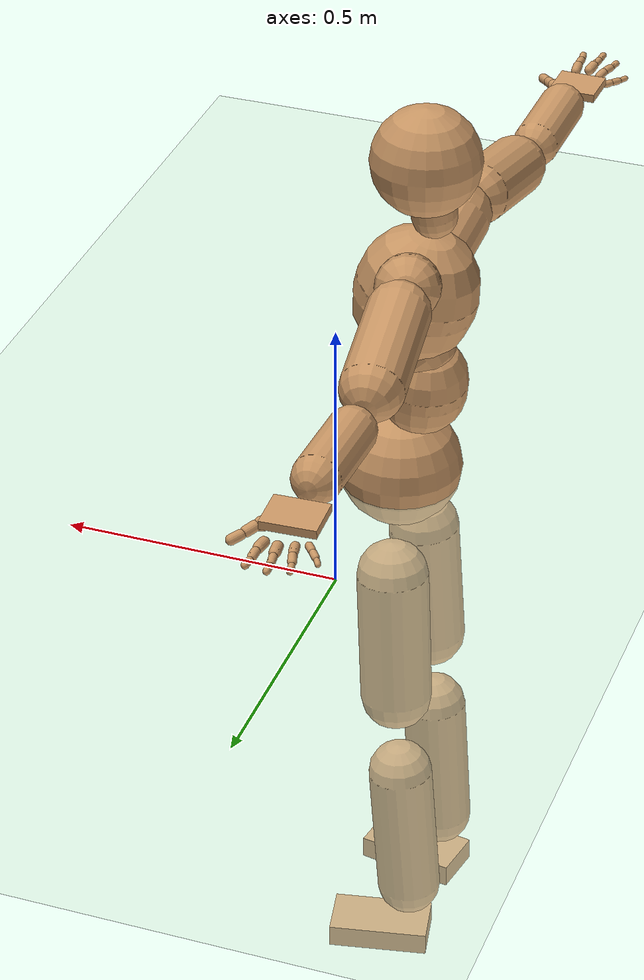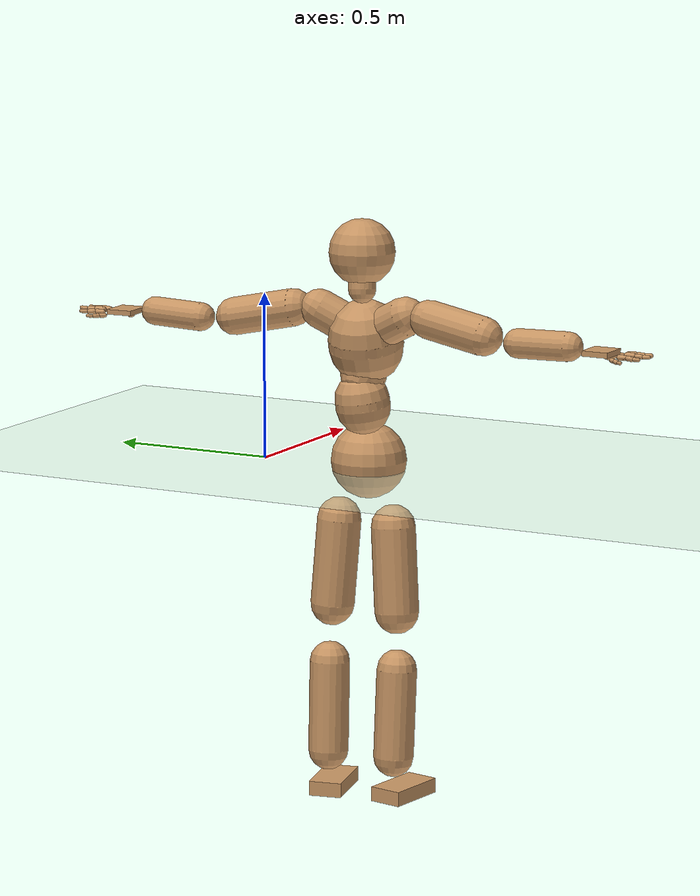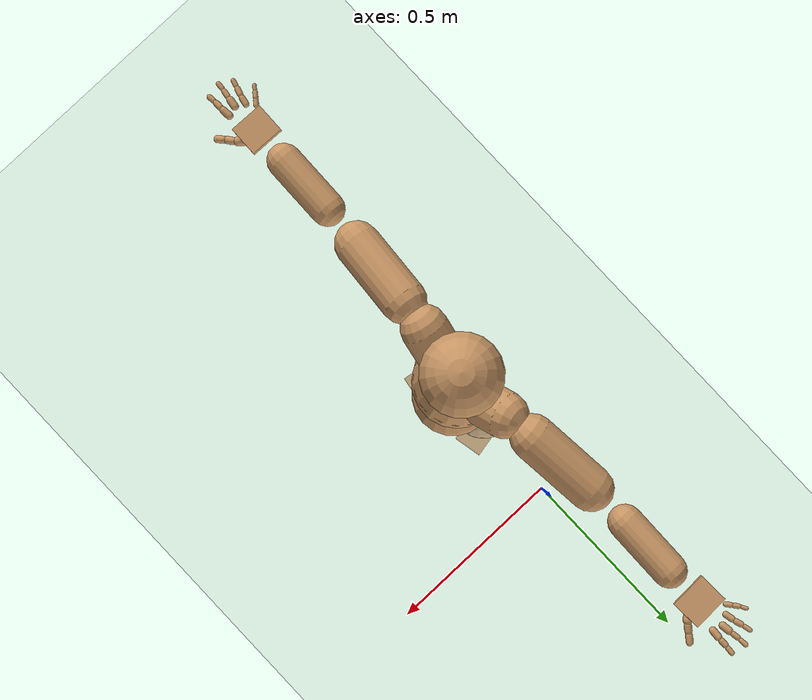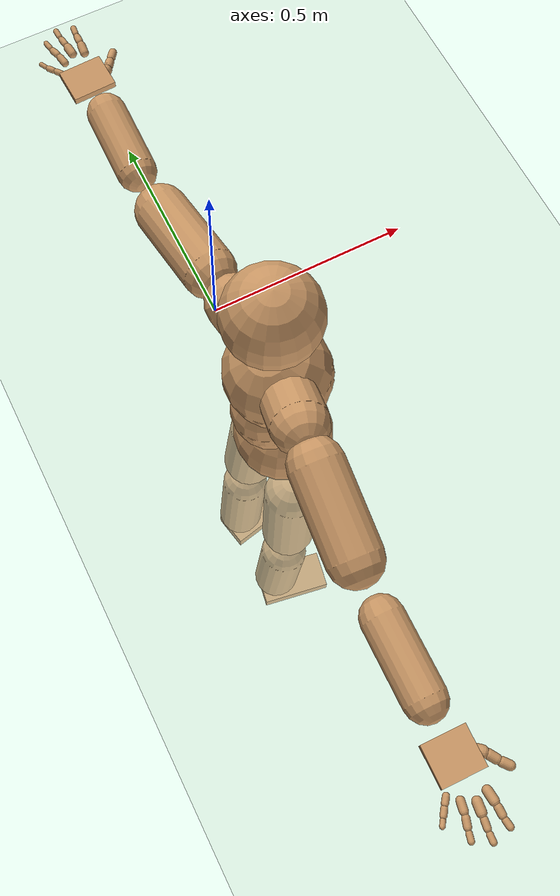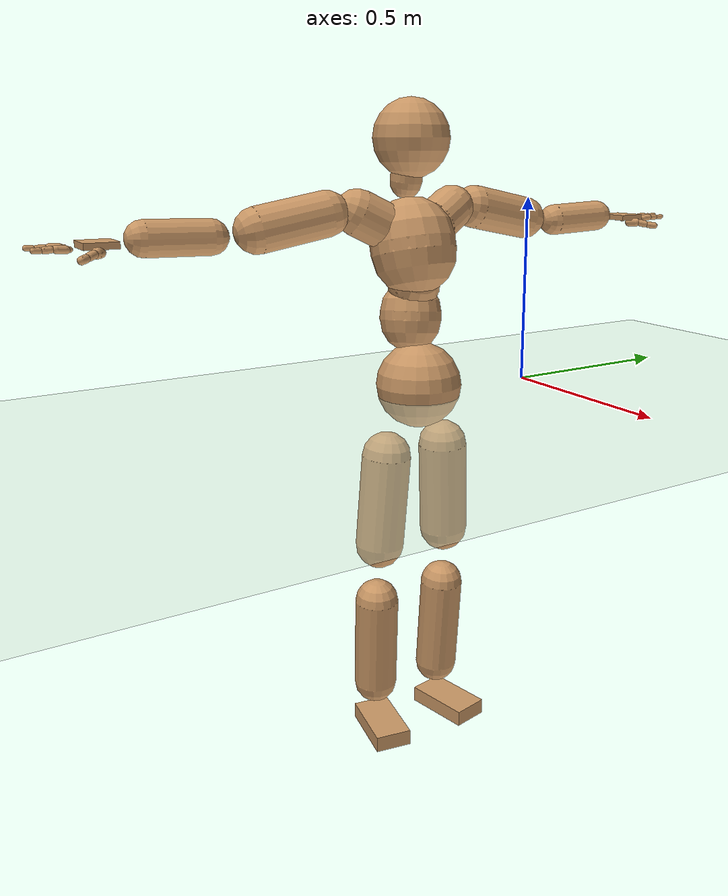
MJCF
<mujoco model="humanoid">
  <compiler coordinate="local" angle="radian"/>
  <default>
    <joint damping="0.0" armature="0.01" stiffness="0.0" limited="true"/>
    <geom conaffinity="1" condim="3" contype="7" margin="0.001" rgba="0.8 0.6 .4 1"/>
  </default>
  <asset>
    <texture type="skybox" builtin="gradient" rgb1=".4 .5 .6" rgb2="0 0 0" width="100" height="100"/>
    <texture builtin="flat" height="1278" mark="cross" markrgb="1 1 1" name="texgeom" random="0.01" rgb1="0.8 0.6 0.4" rgb2="0.8 0.6 0.4" type="cube" width="127"/>
    <texture builtin="checker" height="100" name="texplane" rgb1="0 0 0" rgb2="0.8 0.8 0.8" type="2d" width="100"/>
    <material name="MatPlane" reflectance="0.5" shininess="1" specular="1" texrepeat="60 60" texture="texplane"/>
    <material name="geom" texture="texgeom" texuniform="true"/>
  </asset>
  <worldbody>
    <light cutoff="100" diffuse="1 1 1" dir="-0 0 -1.3" directional="true" exponent="1" pos="0 0 1.3" specular=".1 .1 .1"/>
    <geom conaffinity="1" condim="3" name="floor" pos="0 0 0" rgba="0.8 0.9 0.8 1" size="100 100 .2" type="plane" material="MatPlane"/>
    <body name="Pelvis" pos="0.0007 -0.3512 0.027">
      <freejoint name="Pelvis"/>
      <geom type="sphere" contype="1" conaffinity="1" density="500" size="0.1137" pos="0.0000 0.0000 0.0000" name="Pelvis"/>
      <body name="L_Hip" pos="-0.0125 0.085 -0.0979">
        <joint name="L_Hip_x" type="hinge" pos="0 0 0" axis="1 0 0" stiffness="800" damping="80" armature="0.02" range="-180.0000 180.0000"/>
        <joint name="L_Hip_y" type="hinge" pos="0 0 0" axis="0 1 0" stiffness="800" damping="80" armature="0.02" range="-180.0000 180.0000"/>
        <joint name="L_Hip_z" type="hinge" pos="0 0 0" axis="0 0 1" stiffness="800" damping="80" armature="0.02" range="-180.0000 180.0000"/>
        <geom type="capsule" contype="1" conaffinity="1" density="500" fromto="-0.0050 0.0051 -0.0862 -0.0199 0.0205 -0.3450" size="0.0663" name="L_Hip"/>
        <body name="L_Knee" pos="-0.0248 0.0257 -0.4312">
          <joint name="L_Knee_x" type="hinge" pos="0 0 0" axis="1 0 0" stiffness="800" damping="80" armature="0.02" range="-180.0000 180.0000"/>
          <joint name="L_Knee_y" type="hinge" pos="0 0 0" axis="0 1 0" stiffness="800" damping="80" armature="0.02" range="-180.0000 180.0000"/>
          <joint name="L_Knee_z" type="hinge" pos="0 0 0" axis="0 0 1" stiffness="800" damping="80" armature="0.02" range="-180.0000 180.0000"/>
          <geom type="capsule" contype="1" conaffinity="1" density="500" fromto="-0.0063 -0.0016 -0.0907 -0.0253 -0.0065 -0.3629" size="0.0601" name="L_Knee"/>
          <body name="L_Ankle" pos="-0.0316 -0.0081 -0.4536">
            <joint name="L_Ankle_x" type="hinge" pos="0 0 0" axis="1 0 0" stiffness="800" damping="80" armature="0.02" range="-180.0000 180.0000"/>
            <joint name="L_Ankle_y" type="hinge" pos="0 0 0" axis="0 1 0" stiffness="800" damping="80" armature="0.02" range="-180.0000 180.0000"/>
            <joint name="L_Ankle_z" type="hinge" pos="0 0 0" axis="0 0 1" stiffness="800" damping="80" armature="0.02" range="-180.0000 180.0000"/>
            <geom type="box" contype="1" conaffinity="1" density="500" pos="0.0595 0.0121 -0.0243" size="0.0941 0.0499 0.0222" quat="0.9950 0.0000 0.0000 0.1003" name="L_Ankle"/>
            <body name="L_Toe" pos="0.1189 0.0242 -0.0485">
              <joint name="L_Toe_x" type="hinge" pos="0 0 0" axis="1 0 0" stiffness="500" damping="50" armature="0.02" range="-180.0000 180.0000"/>
              <joint name="L_Toe_y" type="hinge" pos="0 0 0" axis="0 1 0" stiffness="500" damping="50" armature="0.02" range="-180.0000 180.0000"/>
              <joint name="L_Toe_z" type="hinge" pos="0 0 0" axis="0 0 1" stiffness="500" damping="50" armature="0.02" range="-180.0000 180.0000"/>
              <geom type="box" contype="1" conaffinity="1" density="500" pos="0.0000 0.0000 0.0233" size="0.001 0.0024 0.0011" quat="0.9943 0.0000 0.0000 0.1066" name="L_Toe"/>
            </body>
          </body>
        </body>
      </body>
      <body name="R_Hip" pos="-0.0138 -0.0847 -0.1043">
        <joint name="R_Hip_x" type="hinge" pos="0 0 0" axis="1 0 0" stiffness="800" damping="80" armature="0.02" range="-180.0000 180.0000"/>
        <joint name="R_Hip_y" type="hinge" pos="0 0 0" axis="0 1 0" stiffness="800" damping="80" armature="0.02" range="-180.0000 180.0000"/>
        <joint name="R_Hip_z" type="hinge" pos="0 0 0" axis="0 0 1" stiffness="800" damping="80" armature="0.02" range="-180.0000 180.0000"/>
        <geom type="capsule" contype="1" conaffinity="1" density="500" fromto="-0.0036 -0.0059 -0.0855 -0.0145 -0.0238 -0.3419" size="0.0661" name="R_Hip"/>
        <body name="R_Knee" pos="-0.0181 -0.0297 -0.4274">
          <joint name="R_Knee_x" type="hinge" pos="0 0 0" axis="1 0 0" stiffness="800" damping="80" armature="0.02" range="-180.0000 180.0000"/>
          <joint name="R_Knee_y" type="hinge" pos="0 0 0" axis="0 1 0" stiffness="800" damping="80" armature="0.02" range="-180.0000 180.0000"/>
          <joint name="R_Knee_z" type="hinge" pos="0 0 0" axis="0 0 1" stiffness="800" damping="80" armature="0.02" range="-180.0000 180.0000"/>
          <geom type="capsule" contype="1" conaffinity="1" density="500" fromto="-0.0057 0.0006 -0.0889 -0.0227 0.0023 -0.3554" size="0.0601" name="R_Knee"/>
          <body name="R_Ankle" pos="-0.0283 0.0029 -0.4443">
            <joint name="R_Ankle_x" type="hinge" pos="0 0 0" axis="1 0 0" stiffness="800" damping="80" armature="0.02" range="-180.0000 180.0000"/>
            <joint name="R_Ankle_y" type="hinge" pos="0 0 0" axis="0 1 0" stiffness="800" damping="80" armature="0.02" range="-180.0000 180.0000"/>
            <joint name="R_Ankle_z" type="hinge" pos="0 0 0" axis="0 0 1" stiffness="800" damping="80" armature="0.02" range="-180.0000 180.0000"/>
            <geom type="box" contype="1" conaffinity="1" density="500" pos="0.0564 -0.0097 -0.0259" size="0.0941 0.0499 0.0222" quat="0.9963 0.0000 0.0000 -0.0855" name="R_Ankle"/>
            <body name="R_Toe" pos="0.1128 -0.0195 -0.0519">
              <joint name="R_Toe_x" type="hinge" pos="0 0 0" axis="1 0 0" stiffness="500" damping="50" armature="0.02" range="-180.0000 180.0000"/>
              <joint name="R_Toe_y" type="hinge" pos="0 0 0" axis="0 1 0" stiffness="500" damping="50" armature="0.02" range="-180.0000 180.0000"/>
              <joint name="R_Toe_z" type="hinge" pos="0 0 0" axis="0 0 1" stiffness="500" damping="50" armature="0.02" range="-180.0000 180.0000"/>
              <geom type="box" contype="1" conaffinity="1" density="500" pos="0.0000 0.0000 0.0250" size="0.001 0.0024 0.0011" quat="0.9971 0.0000 0.0000 -0.0756" name="R_Toe"/>
            </body>
          </body>
        </body>
      </body>
      <body name="Torso" pos="-0.0332 -0.0066 0.1166">
        <joint name="Torso_x" type="hinge" pos="0 0 0" axis="1 0 0" stiffness="1000" damping="100" armature="0.02" range="-180.0000 180.0000"/>
        <joint name="Torso_y" type="hinge" pos="0 0 0" axis="0 1 0" stiffness="1000" damping="100" armature="0.02" range="-180.0000 180.0000"/>
        <joint name="Torso_z" type="hinge" pos="0 0 0" axis="0 0 1" stiffness="1000" damping="100" armature="0.02" range="-180.0000 180.0000"/>
        <geom type="capsule" contype="1" conaffinity="1" density="500" fromto="-0.0085 0.0078 0.0739 -0.0057 0.0052 0.0493" size="0.0814" name="Torso"/>
        <body name="Spine" pos="-0.0141 0.013 0.1231">
          <joint name="Spine_x" type="hinge" pos="0 0 0" axis="1 0 0" stiffness="1000" damping="100" armature="0.02" range="-180.0000 180.0000"/>
          <joint name="Spine_y" type="hinge" pos="0 0 0" axis="0 1 0" stiffness="1000" damping="100" armature="0.02" range="-180.0000 180.0000"/>
          <joint name="Spine_z" type="hinge" pos="0 0 0" axis="0 0 1" stiffness="1000" damping="100" armature="0.02" range="-180.0000 180.0000"/>
          <geom type="capsule" contype="1" conaffinity="1" density="500" fromto="0.0247 -0.0044 0.0276 0.0165 -0.0030 0.0184" size="0.0677" name="Spine"/>
          <body name="Chest" pos="0.0412 -0.0074 0.0459">
            <joint name="Chest_x" type="hinge" pos="0 0 0" axis="1 0 0" stiffness="1000" damping="100" armature="0.02" range="-180.0000 180.0000"/>
            <joint name="Chest_y" type="hinge" pos="0 0 0" axis="0 1 0" stiffness="1000" damping="100" armature="0.02" range="-180.0000 180.0000"/>
            <joint name="Chest_z" type="hinge" pos="0 0 0" axis="0 0 1" stiffness="1000" damping="100" armature="0.02" range="-180.0000 180.0000"/>
            <geom type="capsule" contype="1" conaffinity="1" density="500" fromto="-0.0214 -0.0017 0.0898 -0.0143 -0.0012 0.0598" size="0.1112" name="Chest"/>
            <body name="Neck" pos="-0.0516 -0.0064 0.207">
              <joint name="Neck_x" type="hinge" pos="0 0 0" axis="1 0 0" stiffness="500" damping="50" armature="0.02" range="-180.0000 180.0000"/>
              <joint name="Neck_y" type="hinge" pos="0 0 0" axis="0 1 0" stiffness="500" damping="50" armature="0.02" range="-180.0000 180.0000"/>
              <joint name="Neck_z" type="hinge" pos="0 0 0" axis="0 0 1" stiffness="500" damping="50" armature="0.02" range="-180.0000 180.0000"/>
              <geom type="capsule" contype="1" conaffinity="1" density="500" fromto="0.0036 0.0019 0.0267 0.0142 0.0076 0.1070" size="0.0413" name="Neck"/>
              <body name="Head" pos="0.0178 0.0095 0.1337">
                <joint name="Head_x" type="hinge" pos="0 0 0" axis="1 0 0" stiffness="500" damping="50" armature="0.02" range="-180.0000 180.0000"/>
                <joint name="Head_y" type="hinge" pos="0 0 0" axis="0 1 0" stiffness="500" damping="50" armature="0.02" range="-180.0000 180.0000"/>
                <joint name="Head_z" type="hinge" pos="0 0 0" axis="0 0 1" stiffness="500" damping="50" armature="0.02" range="-180.0000 180.0000"/>
                <geom type="sphere" contype="1" conaffinity="1" density="500" size="0.0986" pos="0.0000 0.0000 0.0000" name="Head"/>
              </body>
            </body>
            <body name="L_Thorax" pos="-0.0241 0.0579 0.123">
              <joint name="L_Thorax_x" type="hinge" pos="0 0 0" axis="1 0 0" stiffness="500" damping="50" armature="0.02" range="-180.0000 180.0000"/>
              <joint name="L_Thorax_y" type="hinge" pos="0 0 0" axis="0 1 0" stiffness="500" damping="50" armature="0.02" range="-180.0000 180.0000"/>
              <joint name="L_Thorax_z" type="hinge" pos="0 0 0" axis="0 0 1" stiffness="500" damping="50" armature="0.02" range="-180.0000 180.0000"/>
              <geom type="capsule" contype="1" conaffinity="1" density="500" fromto="-0.0058 0.0197 0.0108 -0.0232 0.0788 0.0433" size="0.0579" name="L_Thorax"/>
              <body name="L_Shoulder" pos="-0.029 0.0985 0.0541">
                <joint name="L_Shoulder_x" type="hinge" pos="0 0 0" axis="1 0 0" stiffness="500" damping="50" armature="0.02" range="-180.0000 180.0000"/>
                <joint name="L_Shoulder_y" type="hinge" pos="0 0 0" axis="0 1 0" stiffness="500" damping="50" armature="0.02" range="-180.0000 180.0000"/>
                <joint name="L_Shoulder_z" type="hinge" pos="0 0 0" axis="0 0 1" stiffness="500" damping="50" armature="0.02" range="-180.0000 180.0000"/>
                <geom type="capsule" contype="1" conaffinity="1" density="500" fromto="-0.0061 0.0624 -0.0124 -0.0246 0.2495 -0.0497" size="0.0566" name="L_Shoulder"/>
                <body name="L_Elbow" pos="-0.0307 0.3118 -0.0622">
                  <joint name="L_Elbow_x" type="hinge" pos="0 0 0" axis="1 0 0" stiffness="500" damping="50" armature="0.02" range="-720.0000 720.0000"/>
                  <joint name="L_Elbow_y" type="hinge" pos="0 0 0" axis="0 1 0" stiffness="500" damping="50" armature="0.02" range="-720.0000 720.0000"/>
                  <joint name="L_Elbow_z" type="hinge" pos="0 0 0" axis="0 0 1" stiffness="500" damping="50" armature="0.02" range="-720.0000 720.0000"/>
                  <geom type="capsule" contype="1" conaffinity="1" density="500" fromto="0.0009 0.0525 0.0020 0.0035 0.2101 0.0079" size="0.0429" name="L_Elbow"/>
                  <body name="L_Wrist" pos="0.0044 0.2627 0.0099">
                    <joint name="L_Wrist_x" type="hinge" pos="0 0 0" axis="1 0 0" stiffness="300" damping="30" armature="0.02" range="-180.0000 180.0000"/>
                    <joint name="L_Wrist_y" type="hinge" pos="0 0 0" axis="0 1 0" stiffness="300" damping="30" armature="0.02" range="-180.0000 180.0000"/>
                    <joint name="L_Wrist_z" type="hinge" pos="0 0 0" axis="0 0 1" stiffness="300" damping="30" armature="0.02" range="-180.0000 180.0000"/>
                    <geom type="box" contype="1" conaffinity="1" density="500" pos="-0.0022 0.0504 -0.0089" size="0.0396 0.0477 0.0076" quat="0.7221 0.0000 0.0000 -0.6918" name="L_Wrist"/>
                    <body name="L_Index1" pos="0.021 0.1175 -0.0153">
                      <joint name="L_Index1_x" type="hinge" pos="0 0 0" axis="1 0 0" stiffness="100" damping="10" armature="0.02" range="-180.0000 180.0000"/>
                      <joint name="L_Index1_y" type="hinge" pos="0 0 0" axis="0 1 0" stiffness="100" damping="10" armature="0.02" range="-180.0000 180.0000"/>
                      <joint name="L_Index1_z" type="hinge" pos="0 0 0" axis="0 0 1" stiffness="100" damping="10" armature="0.02" range="-180.0000 180.0000"/>
                      <geom type="capsule" contype="1" conaffinity="1" density="500" fromto="0.0005 0.0066 0.0006 0.0020 0.0266 0.0025" size="0.0093" name="L_Index1"/>
                      <body name="L_Index2" pos="0.0025 0.0332 0.0032">
                        <joint name="L_Index2_x" type="hinge" pos="0 0 0" axis="1 0 0" stiffness="100" damping="10" armature="0.02" range="-180.0000 180.0000"/>
                        <joint name="L_Index2_y" type="hinge" pos="0 0 0" axis="0 1 0" stiffness="100" damping="10" armature="0.02" range="-180.0000 180.0000"/>
                        <joint name="L_Index2_z" type="hinge" pos="0 0 0" axis="0 0 1" stiffness="100" damping="10" armature="0.02" range="-180.0000 180.0000"/>
                        <geom type="capsule" contype="1" conaffinity="1" density="500" fromto="0.0001 0.0047 -0.0003 0.0003 0.0187 -0.0011" size="0.0078" name="L_Index2"/>
                        <body name="L_Index3" pos="0.0003 0.0234 -0.0013">
                          <joint name="L_Index3_x" type="hinge" pos="0 0 0" axis="1 0 0" stiffness="100" damping="10" armature="0.02" range="-180.0000 180.0000"/>
                          <joint name="L_Index3_y" type="hinge" pos="0 0 0" axis="0 1 0" stiffness="100" damping="10" armature="0.02" range="-180.0000 180.0000"/>
                          <joint name="L_Index3_z" type="hinge" pos="0 0 0" axis="0 0 1" stiffness="100" damping="10" armature="0.02" range="-180.0000 180.0000"/>
                          <geom type="capsule" contype="1" conaffinity="1" density="500" fromto="0.0005 0.0051 0.0001 0.0019 0.0203 0.0005" size="0.0065" name="L_Index3"/>
                        </body>
                      </body>
                    </body>
                    <body name="L_Middle1" pos="-0.0028 0.1251 -0.0125">
                      <joint name="L_Middle1_x" type="hinge" pos="0 0 0" axis="1 0 0" stiffness="100" damping="10" armature="0.02" range="-180.0000 180.0000"/>
                      <joint name="L_Middle1_y" type="hinge" pos="0 0 0" axis="0 1 0" stiffness="100" damping="10" armature="0.02" range="-180.0000 180.0000"/>
                      <joint name="L_Middle1_z" type="hinge" pos="0 0 0" axis="0 0 1" stiffness="100" damping="10" armature="0.02" range="-180.0000 180.0000"/>
                      <geom type="capsule" contype="1" conaffinity="1" density="500" fromto="-0.0008 0.0063 0.0004 -0.0033 0.0252 0.0014" size="0.0095" name="L_Middle1"/>
                      <body name="L_Middle2" pos="-0.0041 0.0315 0.0018">
                        <joint name="L_Middle2_x" type="hinge" pos="0 0 0" axis="1 0 0" stiffness="100" damping="10" armature="0.02" range="-180.0000 180.0000"/>
                        <joint name="L_Middle2_y" type="hinge" pos="0 0 0" axis="0 1 0" stiffness="100" damping="10" armature="0.02" range="-180.0000 180.0000"/>
                        <joint name="L_Middle2_z" type="hinge" pos="0 0 0" axis="0 0 1" stiffness="100" damping="10" armature="0.02" range="-180.0000 180.0000"/>
                        <geom type="capsule" contype="1" conaffinity="1" density="500" fromto="-0.0008 0.0049 -0.0001 -0.0031 0.0195 -0.0005" size="0.007" name="L_Middle2"/>
                        <body name="L_Middle3" pos="-0.0039 0.0244 -0.0006">
                          <joint name="L_Middle3_x" type="hinge" pos="0 0 0" axis="1 0 0" stiffness="100" damping="10" armature="0.02" range="-180.0000 180.0000"/>
                          <joint name="L_Middle3_y" type="hinge" pos="0 0 0" axis="0 1 0" stiffness="100" damping="10" armature="0.02" range="-180.0000 180.0000"/>
                          <joint name="L_Middle3_z" type="hinge" pos="0 0 0" axis="0 0 1" stiffness="100" damping="10" armature="0.02" range="-180.0000 180.0000"/>
                          <geom type="capsule" contype="1" conaffinity="1" density="500" fromto="-0.0004 0.0053 0.0003 -0.0015 0.0211 0.0011" size="0.0061" name="L_Middle3"/>
                        </body>
                      </body>
                    </body>
                    <body name="L_Pinky1" pos="-0.0419 0.0981 -0.0213">
                      <joint name="L_Pinky1_x" type="hinge" pos="0 0 0" axis="1 0 0" stiffness="100" damping="10" armature="0.02" range="-180.0000 180.0000"/>
                      <joint name="L_Pinky1_y" type="hinge" pos="0 0 0" axis="0 1 0" stiffness="100" damping="10" armature="0.02" range="-180.0000 180.0000"/>
                      <joint name="L_Pinky1_z" type="hinge" pos="0 0 0" axis="0 0 1" stiffness="100" damping="10" armature="0.02" range="-180.0000 180.0000"/>
                      <geom type="capsule" contype="1" conaffinity="1" density="500" fromto="-0.0025 0.0031 -0.0001 -0.0099 0.0125 -0.0004" size="0.0067" name="L_Pinky1"/>
                      <body name="L_Pinky2" pos="-0.0123 0.0156 -0.0004">
                        <joint name="L_Pinky2_x" type="hinge" pos="0 0 0" axis="1 0 0" stiffness="100" damping="10" armature="0.02" range="-180.0000 180.0000"/>
                        <joint name="L_Pinky2_y" type="hinge" pos="0 0 0" axis="0 1 0" stiffness="100" damping="10" armature="0.02" range="-180.0000 180.0000"/>
                        <joint name="L_Pinky2_z" type="hinge" pos="0 0 0" axis="0 0 1" stiffness="100" damping="10" armature="0.02" range="-180.0000 180.0000"/>
                        <geom type="capsule" contype="1" conaffinity="1" density="500" fromto="-0.0024 0.0031 -0.0002 -0.0095 0.0125 -0.0008" size="0.0065" name="L_Pinky2"/>
                        <body name="L_Pinky3" pos="-0.0119 0.0156 -0.001">
                          <joint name="L_Pinky3_x" type="hinge" pos="0 0 0" axis="1 0 0" stiffness="100" damping="10" armature="0.02" range="-180.0000 180.0000"/>
                          <joint name="L_Pinky3_y" type="hinge" pos="0 0 0" axis="0 1 0" stiffness="100" damping="10" armature="0.02" range="-180.0000 180.0000"/>
                          <joint name="L_Pinky3_z" type="hinge" pos="0 0 0" axis="0 0 1" stiffness="100" damping="10" armature="0.02" range="-180.0000 180.0000"/>
                          <geom type="capsule" contype="1" conaffinity="1" density="500" fromto="-0.0020 0.0035 0.0002 -0.0079 0.0141 0.0008" size="0.005" name="L_Pinky3"/>
                        </body>
                      </body>
                    </body>
                    <body name="L_Ring1" pos="-0.0262 0.1123 -0.0158">
                      <joint name="L_Ring1_x" type="hinge" pos="0 0 0" axis="1 0 0" stiffness="100" damping="10" armature="0.02" range="-180.0000 180.0000"/>
                      <joint name="L_Ring1_y" type="hinge" pos="0 0 0" axis="0 1 0" stiffness="100" damping="10" armature="0.02" range="-180.0000 180.0000"/>
                      <joint name="L_Ring1_z" type="hinge" pos="0 0 0" axis="0 0 1" stiffness="100" damping="10" armature="0.02" range="-180.0000 180.0000"/>
                      <geom type="capsule" contype="1" conaffinity="1" density="500" fromto="-0.0012 0.0057 0.0004 -0.0047 0.0230 0.0014" size="0.0081" name="L_Ring1"/>
                      <body name="L_Ring2" pos="-0.0058 0.0287 0.0018">
                        <joint name="L_Ring2_x" type="hinge" pos="0 0 0" axis="1 0 0" stiffness="100" damping="10" armature="0.02" range="-180.0000 180.0000"/>
                        <joint name="L_Ring2_y" type="hinge" pos="0 0 0" axis="0 1 0" stiffness="100" damping="10" armature="0.02" range="-180.0000 180.0000"/>
                        <joint name="L_Ring2_z" type="hinge" pos="0 0 0" axis="0 0 1" stiffness="100" damping="10" armature="0.02" range="-180.0000 180.0000"/>
                        <geom type="capsule" contype="1" conaffinity="1" density="500" fromto="-0.0015 0.0047 -0.0002 -0.0060 0.0187 -0.0009" size="0.0075" name="L_Ring2"/>
                        <body name="L_Ring3" pos="-0.0075 0.0234 -0.0011">
                          <joint name="L_Ring3_x" type="hinge" pos="0 0 0" axis="1 0 0" stiffness="100" damping="10" armature="0.02" range="-180.0000 180.0000"/>
                          <joint name="L_Ring3_y" type="hinge" pos="0 0 0" axis="0 1 0" stiffness="100" damping="10" armature="0.02" range="-180.0000 180.0000"/>
                          <joint name="L_Ring3_z" type="hinge" pos="0 0 0" axis="0 0 1" stiffness="100" damping="10" armature="0.02" range="-180.0000 180.0000"/>
                          <geom type="capsule" contype="1" conaffinity="1" density="500" fromto="-0.0011 0.0051 0.0002 -0.0044 0.0203 0.0007" size="0.0059" name="L_Ring3"/>
                        </body>
                      </body>
                    </body>
                    <body name="L_Thumb1" pos="0.0282 0.0514 -0.0237">
                      <joint name="L_Thumb1_x" type="hinge" pos="0 0 0" axis="1 0 0" stiffness="100" damping="10" armature="0.02" range="-180.0000 180.0000"/>
                      <joint name="L_Thumb1_y" type="hinge" pos="0 0 0" axis="0 1 0" stiffness="100" damping="10" armature="0.02" range="-180.0000 180.0000"/>
                      <joint name="L_Thumb1_z" type="hinge" pos="0 0 0" axis="0 0 1" stiffness="100" damping="10" armature="0.02" range="-180.0000 180.0000"/>
                      <geom type="capsule" contype="1" conaffinity="1" density="500" fromto="0.0049 0.0038 0.0001 0.0196 0.0151 0.0003" size="0.0124" name="L_Thumb1"/>
                      <body name="L_Thumb2" pos="0.0245 0.0189 0.0004">
                        <joint name="L_Thumb2_x" type="hinge" pos="0 0 0" axis="1 0 0" stiffness="100" damping="10" armature="0.02" range="-180.0000 180.0000"/>
                        <joint name="L_Thumb2_y" type="hinge" pos="0 0 0" axis="0 1 0" stiffness="100" damping="10" armature="0.02" range="-180.0000 180.0000"/>
                        <joint name="L_Thumb2_z" type="hinge" pos="0 0 0" axis="0 0 1" stiffness="100" damping="10" armature="0.02" range="-180.0000 180.0000"/>
                        <geom type="capsule" contype="1" conaffinity="1" density="500" fromto="0.0030 0.0043 -0.0012 0.0121 0.0173 -0.0049" size="0.0097" name="L_Thumb2"/>
                        <body name="L_Thumb3" pos="0.0151 0.0217 -0.0062">
                          <joint name="L_Thumb3_x" type="hinge" pos="0 0 0" axis="1 0 0" stiffness="100" damping="10" armature="0.02" range="-180.0000 180.0000"/>
                          <joint name="L_Thumb3_y" type="hinge" pos="0 0 0" axis="0 1 0" stiffness="100" damping="10" armature="0.02" range="-180.0000 180.0000"/>
                          <joint name="L_Thumb3_z" type="hinge" pos="0 0 0" axis="0 0 1" stiffness="100" damping="10" armature="0.02" range="-180.0000 180.0000"/>
                          <geom type="capsule" contype="1" conaffinity="1" density="500" fromto="0.0034 0.0047 -0.0008 0.0137 0.0189 -0.0033" size="0.0091" name="L_Thumb3"/>
                        </body>
                      </body>
                    </body>
                  </body>
                </body>
              </body>
            </body>
            <body name="R_Thorax" pos="-0.0315 -0.0602 0.1188">
              <joint name="R_Thorax_x" type="hinge" pos="0 0 0" axis="1 0 0" stiffness="500" damping="50" armature="0.02" range="-180.0000 180.0000"/>
              <joint name="R_Thorax_y" type="hinge" pos="0 0 0" axis="0 1 0" stiffness="500" damping="50" armature="0.02" range="-180.0000 180.0000"/>
              <joint name="R_Thorax_z" type="hinge" pos="0 0 0" axis="0 0 1" stiffness="500" damping="50" armature="0.02" range="-180.0000 180.0000"/>
              <geom type="capsule" contype="1" conaffinity="1" density="500" fromto="-0.0042 -0.0214 0.0109 -0.0168 -0.0857 0.0438" size="0.0592" name="R_Thorax"/>
              <body name="R_Shoulder" pos="-0.0211 -0.1071 0.0547">
                <joint name="R_Shoulder_x" type="hinge" pos="0 0 0" axis="1 0 0" stiffness="500" damping="50" armature="0.02" range="-180.0000 180.0000"/>
                <joint name="R_Shoulder_y" type="hinge" pos="0 0 0" axis="0 1 0" stiffness="500" damping="50" armature="0.02" range="-180.0000 180.0000"/>
                <joint name="R_Shoulder_z" type="hinge" pos="0 0 0" axis="0 0 1" stiffness="500" damping="50" armature="0.02" range="-180.0000 180.0000"/>
                <geom type="capsule" contype="1" conaffinity="1" density="500" fromto="-0.0046 -0.0603 -0.0111 -0.0184 -0.2413 -0.0442" size="0.057" name="R_Shoulder"/>
                <body name="R_Elbow" pos="-0.0231 -0.3017 -0.0553">
                  <joint name="R_Elbow_x" type="hinge" pos="0 0 0" axis="1 0 0" stiffness="500" damping="50" armature="0.02" range="-720.0000 720.0000"/>
                  <joint name="R_Elbow_y" type="hinge" pos="0 0 0" axis="0 1 0" stiffness="500" damping="50" armature="0.02" range="-720.0000 720.0000"/>
                  <joint name="R_Elbow_z" type="hinge" pos="0 0 0" axis="0 0 1" stiffness="500" damping="50" armature="0.02" range="-720.0000 720.0000"/>
                  <geom type="capsule" contype="1" conaffinity="1" density="500" fromto="-0.0011 -0.0526 0.0011 -0.0044 -0.2105 0.0046" size="0.0431" name="R_Elbow"/>
                  <body name="R_Wrist" pos="-0.0055 -0.2632 0.0057">
                    <joint name="R_Wrist_x" type="hinge" pos="0 0 0" axis="1 0 0" stiffness="300" damping="30" armature="0.02" range="-180.0000 180.0000"/>
                    <joint name="R_Wrist_y" type="hinge" pos="0 0 0" axis="0 1 0" stiffness="300" damping="30" armature="0.02" range="-180.0000 180.0000"/>
                    <joint name="R_Wrist_z" type="hinge" pos="0 0 0" axis="0 0 1" stiffness="300" damping="30" armature="0.02" range="-180.0000 180.0000"/>
                    <geom type="box" contype="1" conaffinity="1" density="500" pos="-0.0013 -0.0496 -0.0085" size="0.0396 0.0444 0.0079" quat="0.7161 0.0000 0.0000 0.6980" name="R_Wrist"/>
                    <body name="R_Index1" pos="0.0228 -0.1158 -0.0145">
                      <joint name="R_Index1_x" type="hinge" pos="0 0 0" axis="1 0 0" stiffness="100" damping="10" armature="0.02" range="-180.0000 180.0000"/>
                      <joint name="R_Index1_y" type="hinge" pos="0 0 0" axis="0 1 0" stiffness="100" damping="10" armature="0.02" range="-180.0000 180.0000"/>
                      <joint name="R_Index1_z" type="hinge" pos="0 0 0" axis="0 0 1" stiffness="100" damping="10" armature="0.02" range="-180.0000 180.0000"/>
                      <geom type="capsule" contype="1" conaffinity="1" density="500" fromto="0.0005 -0.0066 0.0006 0.0020 -0.0266 0.0025" size="0.0093" name="R_Index1"/>
                      <body name="R_Index2" pos="0.0025 -0.0332 0.0032">
                        <joint name="R_Index2_x" type="hinge" pos="0 0 0" axis="1 0 0" stiffness="100" damping="10" armature="0.02" range="-180.0000 180.0000"/>
                        <joint name="R_Index2_y" type="hinge" pos="0 0 0" axis="0 1 0" stiffness="100" damping="10" armature="0.02" range="-180.0000 180.0000"/>
                        <joint name="R_Index2_z" type="hinge" pos="0 0 0" axis="0 0 1" stiffness="100" damping="10" armature="0.02" range="-180.0000 180.0000"/>
                        <geom type="capsule" contype="1" conaffinity="1" density="500" fromto="0.0001 -0.0047 -0.0003 0.0003 -0.0187 -0.0011" size="0.0078" name="R_Index2"/>
                        <body name="R_Index3" pos="0.0003 -0.0234 -0.0013">
                          <joint name="R_Index3_x" type="hinge" pos="0 0 0" axis="1 0 0" stiffness="100" damping="10" armature="0.02" range="-180.0000 180.0000"/>
                          <joint name="R_Index3_y" type="hinge" pos="0 0 0" axis="0 1 0" stiffness="100" damping="10" armature="0.02" range="-180.0000 180.0000"/>
                          <joint name="R_Index3_z" type="hinge" pos="0 0 0" axis="0 0 1" stiffness="100" damping="10" armature="0.02" range="-180.0000 180.0000"/>
                          <geom type="capsule" contype="1" conaffinity="1" density="500" fromto="0.0005 -0.0043 0.0001 0.0019 -0.0171 0.0005" size="0.0068" name="R_Index3"/>
                        </body>
                      </body>
                    </body>
                    <body name="R_Middle1" pos="-0.001 -0.1235 -0.0118">
                      <joint name="R_Middle1_x" type="hinge" pos="0 0 0" axis="1 0 0" stiffness="100" damping="10" armature="0.02" range="-180.0000 180.0000"/>
                      <joint name="R_Middle1_y" type="hinge" pos="0 0 0" axis="0 1 0" stiffness="100" damping="10" armature="0.02" range="-180.0000 180.0000"/>
                      <joint name="R_Middle1_z" type="hinge" pos="0 0 0" axis="0 0 1" stiffness="100" damping="10" armature="0.02" range="-180.0000 180.0000"/>
                      <geom type="capsule" contype="1" conaffinity="1" density="500" fromto="-0.0008 -0.0063 0.0004 -0.0033 -0.0252 0.0014" size="0.0095" name="R_Middle1"/>
                      <body name="R_Middle2" pos="-0.0041 -0.0315 0.0018">
                        <joint name="R_Middle2_x" type="hinge" pos="0 0 0" axis="1 0 0" stiffness="100" damping="10" armature="0.02" range="-180.0000 180.0000"/>
                        <joint name="R_Middle2_y" type="hinge" pos="0 0 0" axis="0 1 0" stiffness="100" damping="10" armature="0.02" range="-180.0000 180.0000"/>
                        <joint name="R_Middle2_z" type="hinge" pos="0 0 0" axis="0 0 1" stiffness="100" damping="10" armature="0.02" range="-180.0000 180.0000"/>
                        <geom type="capsule" contype="1" conaffinity="1" density="500" fromto="-0.0008 -0.0049 -0.0001 -0.0031 -0.0195 -0.0005" size="0.007" name="R_Middle2"/>
                        <body name="R_Middle3" pos="-0.0039 -0.0244 -0.0006">
                          <joint name="R_Middle3_x" type="hinge" pos="0 0 0" axis="1 0 0" stiffness="100" damping="10" armature="0.02" range="-180.0000 180.0000"/>
                          <joint name="R_Middle3_y" type="hinge" pos="0 0 0" axis="0 1 0" stiffness="100" damping="10" armature="0.02" range="-180.0000 180.0000"/>
                          <joint name="R_Middle3_z" type="hinge" pos="0 0 0" axis="0 0 1" stiffness="100" damping="10" armature="0.02" range="-180.0000 180.0000"/>
                          <geom type="capsule" contype="1" conaffinity="1" density="500" fromto="-0.0004 -0.0045 0.0003 -0.0015 -0.0179 0.0011" size="0.0063" name="R_Middle3"/>
                        </body>
                      </body>
                    </body>
                    <body name="R_Pinky1" pos="-0.0401 -0.0964 -0.0206">
                      <joint name="R_Pinky1_x" type="hinge" pos="0 0 0" axis="1 0 0" stiffness="100" damping="10" armature="0.02" range="-180.0000 180.0000"/>
                      <joint name="R_Pinky1_y" type="hinge" pos="0 0 0" axis="0 1 0" stiffness="100" damping="10" armature="0.02" range="-180.0000 180.0000"/>
                      <joint name="R_Pinky1_z" type="hinge" pos="0 0 0" axis="0 0 1" stiffness="100" damping="10" armature="0.02" range="-180.0000 180.0000"/>
                      <geom type="capsule" contype="1" conaffinity="1" density="500" fromto="-0.0025 -0.0031 -0.0001 -0.0099 -0.0125 -0.0004" size="0.0067" name="R_Pinky1"/>
                      <body name="R_Pinky2" pos="-0.0123 -0.0156 -0.0004">
                        <joint name="R_Pinky2_x" type="hinge" pos="0 0 0" axis="1 0 0" stiffness="100" damping="10" armature="0.02" range="-180.0000 180.0000"/>
                        <joint name="R_Pinky2_y" type="hinge" pos="0 0 0" axis="0 1 0" stiffness="100" damping="10" armature="0.02" range="-180.0000 180.0000"/>
                        <joint name="R_Pinky2_z" type="hinge" pos="0 0 0" axis="0 0 1" stiffness="100" damping="10" armature="0.02" range="-180.0000 180.0000"/>
                        <geom type="capsule" contype="1" conaffinity="1" density="500" fromto="-0.0024 -0.0031 -0.0002 -0.0095 -0.0125 -0.0008" size="0.0065" name="R_Pinky2"/>
                        <body name="R_Pinky3" pos="-0.0119 -0.0156 -0.001">
                          <joint name="R_Pinky3_x" type="hinge" pos="0 0 0" axis="1 0 0" stiffness="100" damping="10" armature="0.02" range="-180.0000 180.0000"/>
                          <joint name="R_Pinky3_y" type="hinge" pos="0 0 0" axis="0 1 0" stiffness="100" damping="10" armature="0.02" range="-180.0000 180.0000"/>
                          <joint name="R_Pinky3_z" type="hinge" pos="0 0 0" axis="0 0 1" stiffness="100" damping="10" armature="0.02" range="-180.0000 180.0000"/>
                          <geom type="capsule" contype="1" conaffinity="1" density="500" fromto="-0.0020 -0.0027 0.0002 -0.0079 -0.0109 0.0008" size="0.0053" name="R_Pinky3"/>
                        </body>
                      </body>
                    </body>
                    <body name="R_Ring1" pos="-0.0244 -0.1106 -0.015">
                      <joint name="R_Ring1_x" type="hinge" pos="0 0 0" axis="1 0 0" stiffness="100" damping="10" armature="0.02" range="-180.0000 180.0000"/>
                      <joint name="R_Ring1_y" type="hinge" pos="0 0 0" axis="0 1 0" stiffness="100" damping="10" armature="0.02" range="-180.0000 180.0000"/>
                      <joint name="R_Ring1_z" type="hinge" pos="0 0 0" axis="0 0 1" stiffness="100" damping="10" armature="0.02" range="-180.0000 180.0000"/>
                      <geom type="capsule" contype="1" conaffinity="1" density="500" fromto="-0.0012 -0.0057 0.0004 -0.0047 -0.0230 0.0014" size="0.0081" name="R_Ring1"/>
                      <body name="R_Ring2" pos="-0.0058 -0.0287 0.0018">
                        <joint name="R_Ring2_x" type="hinge" pos="0 0 0" axis="1 0 0" stiffness="100" damping="10" armature="0.02" range="-180.0000 180.0000"/>
                        <joint name="R_Ring2_y" type="hinge" pos="0 0 0" axis="0 1 0" stiffness="100" damping="10" armature="0.02" range="-180.0000 180.0000"/>
                        <joint name="R_Ring2_z" type="hinge" pos="0 0 0" axis="0 0 1" stiffness="100" damping="10" armature="0.02" range="-180.0000 180.0000"/>
                        <geom type="capsule" contype="1" conaffinity="1" density="500" fromto="-0.0015 -0.0047 -0.0002 -0.0060 -0.0187 -0.0009" size="0.0075" name="R_Ring2"/>
                        <body name="R_Ring3" pos="-0.0075 -0.0234 -0.0011">
                          <joint name="R_Ring3_x" type="hinge" pos="0 0 0" axis="1 0 0" stiffness="100" damping="10" armature="0.02" range="-180.0000 180.0000"/>
                          <joint name="R_Ring3_y" type="hinge" pos="0 0 0" axis="0 1 0" stiffness="100" damping="10" armature="0.02" range="-180.0000 180.0000"/>
                          <joint name="R_Ring3_z" type="hinge" pos="0 0 0" axis="0 0 1" stiffness="100" damping="10" armature="0.02" range="-180.0000 180.0000"/>
                          <geom type="capsule" contype="1" conaffinity="1" density="500" fromto="-0.0011 -0.0043 0.0002 -0.0044 -0.0171 0.0007" size="0.0061" name="R_Ring3"/>
                        </body>
                      </body>
                    </body>
                    <body name="R_Thumb1" pos="0.03 -0.0497 -0.0229">
                      <joint name="R_Thumb1_x" type="hinge" pos="0 0 0" axis="1 0 0" stiffness="100" damping="10" armature="0.02" range="-180.0000 180.0000"/>
                      <joint name="R_Thumb1_y" type="hinge" pos="0 0 0" axis="0 1 0" stiffness="100" damping="10" armature="0.02" range="-180.0000 180.0000"/>
                      <joint name="R_Thumb1_z" type="hinge" pos="0 0 0" axis="0 0 1" stiffness="100" damping="10" armature="0.02" range="-180.0000 180.0000"/>
                      <geom type="capsule" contype="1" conaffinity="1" density="500" fromto="0.0049 -0.0038 0.0001 0.0196 -0.0151 0.0003" size="0.0124" name="R_Thumb1"/>
                      <body name="R_Thumb2" pos="0.0245 -0.0189 0.0004">
                        <joint name="R_Thumb2_x" type="hinge" pos="0 0 0" axis="1 0 0" stiffness="100" damping="10" armature="0.02" range="-180.0000 180.0000"/>
                        <joint name="R_Thumb2_y" type="hinge" pos="0 0 0" axis="0 1 0" stiffness="100" damping="10" armature="0.02" range="-180.0000 180.0000"/>
                        <joint name="R_Thumb2_z" type="hinge" pos="0 0 0" axis="0 0 1" stiffness="100" damping="10" armature="0.02" range="-180.0000 180.0000"/>
                        <geom type="capsule" contype="1" conaffinity="1" density="500" fromto="0.0030 -0.0043 -0.0012 0.0121 -0.0173 -0.0049" size="0.0097" name="R_Thumb2"/>
                        <body name="R_Thumb3" pos="0.0151 -0.0217 -0.0062">
                          <joint name="R_Thumb3_x" type="hinge" pos="0 0 0" axis="1 0 0" stiffness="100" damping="10" armature="0.02" range="-180.0000 180.0000"/>
                          <joint name="R_Thumb3_y" type="hinge" pos="0 0 0" axis="0 1 0" stiffness="100" damping="10" armature="0.02" range="-180.0000 180.0000"/>
                          <joint name="R_Thumb3_z" type="hinge" pos="0 0 0" axis="0 0 1" stiffness="100" damping="10" armature="0.02" range="-180.0000 180.0000"/>
                          <geom type="capsule" contype="1" conaffinity="1" density="500" fromto="0.0034 -0.0039 -0.0008 0.0137 -0.0157 -0.0033" size="0.0094" name="R_Thumb3"/>
                        </body>
                      </body>
                    </body>
                  </body>
                </body>
              </body>
            </body>
          </body>
        </body>
      </body>
    </body>
  </worldbody>
  <actuator>
    <motor name="L_Hip_x" joint="L_Hip_x" gear="500"/>
    <motor name="L_Hip_y" joint="L_Hip_y" gear="500"/>
    <motor name="L_Hip_z" joint="L_Hip_z" gear="500"/>
    <motor name="L_Knee_x" joint="L_Knee_x" gear="500"/>
    <motor name="L_Knee_y" joint="L_Knee_y" gear="500"/>
    <motor name="L_Knee_z" joint="L_Knee_z" gear="500"/>
    <motor name="L_Ankle_x" joint="L_Ankle_x" gear="500"/>
    <motor name="L_Ankle_y" joint="L_Ankle_y" gear="500"/>
    <motor name="L_Ankle_z" joint="L_Ankle_z" gear="500"/>
    <motor name="L_Toe_x" joint="L_Toe_x" gear="500"/>
    <motor name="L_Toe_y" joint="L_Toe_y" gear="500"/>
    <motor name="L_Toe_z" joint="L_Toe_z" gear="500"/>
    <motor name="R_Hip_x" joint="R_Hip_x" gear="500"/>
    <motor name="R_Hip_y" joint="R_Hip_y" gear="500"/>
    <motor name="R_Hip_z" joint="R_Hip_z" gear="500"/>
    <motor name="R_Knee_x" joint="R_Knee_x" gear="500"/>
    <motor name="R_Knee_y" joint="R_Knee_y" gear="500"/>
    <motor name="R_Knee_z" joint="R_Knee_z" gear="500"/>
    <motor name="R_Ankle_x" joint="R_Ankle_x" gear="500"/>
    <motor name="R_Ankle_y" joint="R_Ankle_y" gear="500"/>
    <motor name="R_Ankle_z" joint="R_Ankle_z" gear="500"/>
    <motor name="R_Toe_x" joint="R_Toe_x" gear="500"/>
    <motor name="R_Toe_y" joint="R_Toe_y" gear="500"/>
    <motor name="R_Toe_z" joint="R_Toe_z" gear="500"/>
    <motor name="Torso_x" joint="Torso_x" gear="500"/>
    <motor name="Torso_y" joint="Torso_y" gear="500"/>
    <motor name="Torso_z" joint="Torso_z" gear="500"/>
    <motor name="Spine_x" joint="Spine_x" gear="500"/>
    <motor name="Spine_y" joint="Spine_y" gear="500"/>
    <motor name="Spine_z" joint="Spine_z" gear="500"/>
    <motor name="Chest_x" joint="Chest_x" gear="500"/>
    <motor name="Chest_y" joint="Chest_y" gear="500"/>
    <motor name="Chest_z" joint="Chest_z" gear="500"/>
    <motor name="Neck_x" joint="Neck_x" gear="500"/>
    <motor name="Neck_y" joint="Neck_y" gear="500"/>
    <motor name="Neck_z" joint="Neck_z" gear="500"/>
    <motor name="Head_x" joint="Head_x" gear="500"/>
    <motor name="Head_y" joint="Head_y" gear="500"/>
    <motor name="Head_z" joint="Head_z" gear="500"/>
    <motor name="L_Thorax_x" joint="L_Thorax_x" gear="500"/>
    <motor name="L_Thorax_y" joint="L_Thorax_y" gear="500"/>
    <motor name="L_Thorax_z" joint="L_Thorax_z" gear="500"/>
    <motor name="L_Shoulder_x" joint="L_Shoulder_x" gear="500"/>
    <motor name="L_Shoulder_y" joint="L_Shoulder_y" gear="500"/>
    <motor name="L_Shoulder_z" joint="L_Shoulder_z" gear="500"/>
    <motor name="L_Elbow_x" joint="L_Elbow_x" gear="500"/>
    <motor name="L_Elbow_y" joint="L_Elbow_y" gear="500"/>
    <motor name="L_Elbow_z" joint="L_Elbow_z" gear="500"/>
    <motor name="L_Wrist_x" joint="L_Wrist_x" gear="500"/>
    <motor name="L_Wrist_y" joint="L_Wrist_y" gear="500"/>
    <motor name="L_Wrist_z" joint="L_Wrist_z" gear="500"/>
    <motor name="L_Index1_x" joint="L_Index1_x" gear="500"/>
    <motor name="L_Index1_y" joint="L_Index1_y" gear="500"/>
    <motor name="L_Index1_z" joint="L_Index1_z" gear="500"/>
    <motor name="L_Index2_x" joint="L_Index2_x" gear="500"/>
    <motor name="L_Index2_y" joint="L_Index2_y" gear="500"/>
    <motor name="L_Index2_z" joint="L_Index2_z" gear="500"/>
    <motor name="L_Index3_x" joint="L_Index3_x" gear="500"/>
    <motor name="L_Index3_y" joint="L_Index3_y" gear="500"/>
    <motor name="L_Index3_z" joint="L_Index3_z" gear="500"/>
    <motor name="L_Middle1_x" joint="L_Middle1_x" gear="500"/>
    <motor name="L_Middle1_y" joint="L_Middle1_y" gear="500"/>
    <motor name="L_Middle1_z" joint="L_Middle1_z" gear="500"/>
    <motor name="L_Middle2_x" joint="L_Middle2_x" gear="500"/>
    <motor name="L_Middle2_y" joint="L_Middle2_y" gear="500"/>
    <motor name="L_Middle2_z" joint="L_Middle2_z" gear="500"/>
    <motor name="L_Middle3_x" joint="L_Middle3_x" gear="500"/>
    <motor name="L_Middle3_y" joint="L_Middle3_y" gear="500"/>
    <motor name="L_Middle3_z" joint="L_Middle3_z" gear="500"/>
    <motor name="L_Pinky1_x" joint="L_Pinky1_x" gear="500"/>
    <motor name="L_Pinky1_y" joint="L_Pinky1_y" gear="500"/>
    <motor name="L_Pinky1_z" joint="L_Pinky1_z" gear="500"/>
    <motor name="L_Pinky2_x" joint="L_Pinky2_x" gear="500"/>
    <motor name="L_Pinky2_y" joint="L_Pinky2_y" gear="500"/>
    <motor name="L_Pinky2_z" joint="L_Pinky2_z" gear="500"/>
    <motor name="L_Pinky3_x" joint="L_Pinky3_x" gear="500"/>
    <motor name="L_Pinky3_y" joint="L_Pinky3_y" gear="500"/>
    <motor name="L_Pinky3_z" joint="L_Pinky3_z" gear="500"/>
    <motor name="L_Ring1_x" joint="L_Ring1_x" gear="500"/>
    <motor name="L_Ring1_y" joint="L_Ring1_y" gear="500"/>
    <motor name="L_Ring1_z" joint="L_Ring1_z" gear="500"/>
    <motor name="L_Ring2_x" joint="L_Ring2_x" gear="500"/>
    <motor name="L_Ring2_y" joint="L_Ring2_y" gear="500"/>
    <motor name="L_Ring2_z" joint="L_Ring2_z" gear="500"/>
    <motor name="L_Ring3_x" joint="L_Ring3_x" gear="500"/>
    <motor name="L_Ring3_y" joint="L_Ring3_y" gear="500"/>
    <motor name="L_Ring3_z" joint="L_Ring3_z" gear="500"/>
    <motor name="L_Thumb1_x" joint="L_Thumb1_x" gear="500"/>
    <motor name="L_Thumb1_y" joint="L_Thumb1_y" gear="500"/>
    <motor name="L_Thumb1_z" joint="L_Thumb1_z" gear="500"/>
    <motor name="L_Thumb2_x" joint="L_Thumb2_x" gear="500"/>
    <motor name="L_Thumb2_y" joint="L_Thumb2_y" gear="500"/>
    <motor name="L_Thumb2_z" joint="L_Thumb2_z" gear="500"/>
    <motor name="L_Thumb3_x" joint="L_Thumb3_x" gear="500"/>
    <motor name="L_Thumb3_y" joint="L_Thumb3_y" gear="500"/>
    <motor name="L_Thumb3_z" joint="L_Thumb3_z" gear="500"/>
    <motor name="R_Thorax_x" joint="R_Thorax_x" gear="500"/>
    <motor name="R_Thorax_y" joint="R_Thorax_y" gear="500"/>
    <motor name="R_Thorax_z" joint="R_Thorax_z" gear="500"/>
    <motor name="R_Shoulder_x" joint="R_Shoulder_x" gear="500"/>
    <motor name="R_Shoulder_y" joint="R_Shoulder_y" gear="500"/>
    <motor name="R_Shoulder_z" joint="R_Shoulder_z" gear="500"/>
    <motor name="R_Elbow_x" joint="R_Elbow_x" gear="500"/>
    <motor name="R_Elbow_y" joint="R_Elbow_y" gear="500"/>
    <motor name="R_Elbow_z" joint="R_Elbow_z" gear="500"/>
    <motor name="R_Wrist_x" joint="R_Wrist_x" gear="500"/>
    <motor name="R_Wrist_y" joint="R_Wrist_y" gear="500"/>
    <motor name="R_Wrist_z" joint="R_Wrist_z" gear="500"/>
    <motor name="R_Index1_x" joint="R_Index1_x" gear="500"/>
    <motor name="R_Index1_y" joint="R_Index1_y" gear="500"/>
    <motor name="R_Index1_z" joint="R_Index1_z" gear="500"/>
    <motor name="R_Index2_x" joint="R_Index2_x" gear="500"/>
    <motor name="R_Index2_y" joint="R_Index2_y" gear="500"/>
    <motor name="R_Index2_z" joint="R_Index2_z" gear="500"/>
    <motor name="R_Index3_x" joint="R_Index3_x" gear="500"/>
    <motor name="R_Index3_y" joint="R_Index3_y" gear="500"/>
    <motor name="R_Index3_z" joint="R_Index3_z" gear="500"/>
    <motor name="R_Middle1_x" joint="R_Middle1_x" gear="500"/>
    <motor name="R_Middle1_y" joint="R_Middle1_y" gear="500"/>
    <motor name="R_Middle1_z" joint="R_Middle1_z" gear="500"/>
    <motor name="R_Middle2_x" joint="R_Middle2_x" gear="500"/>
    <motor name="R_Middle2_y" joint="R_Middle2_y" gear="500"/>
    <motor name="R_Middle2_z" joint="R_Middle2_z" gear="500"/>
    <motor name="R_Middle3_x" joint="R_Middle3_x" gear="500"/>
    <motor name="R_Middle3_y" joint="R_Middle3_y" gear="500"/>
    <motor name="R_Middle3_z" joint="R_Middle3_z" gear="500"/>
    <motor name="R_Pinky1_x" joint="R_Pinky1_x" gear="500"/>
    <motor name="R_Pinky1_y" joint="R_Pinky1_y" gear="500"/>
    <motor name="R_Pinky1_z" joint="R_Pinky1_z" gear="500"/>
    <motor name="R_Pinky2_x" joint="R_Pinky2_x" gear="500"/>
    <motor name="R_Pinky2_y" joint="R_Pinky2_y" gear="500"/>
    <motor name="R_Pinky2_z" joint="R_Pinky2_z" gear="500"/>
    <motor name="R_Pinky3_x" joint="R_Pinky3_x" gear="500"/>
    <motor name="R_Pinky3_y" joint="R_Pinky3_y" gear="500"/>
    <motor name="R_Pinky3_z" joint="R_Pinky3_z" gear="500"/>
    <motor name="R_Ring1_x" joint="R_Ring1_x" gear="500"/>
    <motor name="R_Ring1_y" joint="R_Ring1_y" gear="500"/>
    <motor name="R_Ring1_z" joint="R_Ring1_z" gear="500"/>
    <motor name="R_Ring2_x" joint="R_Ring2_x" gear="500"/>
    <motor name="R_Ring2_y" joint="R_Ring2_y" gear="500"/>
    <motor name="R_Ring2_z" joint="R_Ring2_z" gear="500"/>
    <motor name="R_Ring3_x" joint="R_Ring3_x" gear="500"/>
    <motor name="R_Ring3_y" joint="R_Ring3_y" gear="500"/>
    <motor name="R_Ring3_z" joint="R_Ring3_z" gear="500"/>
    <motor name="R_Thumb1_x" joint="R_Thumb1_x" gear="500"/>
    <motor name="R_Thumb1_y" joint="R_Thumb1_y" gear="500"/>
    <motor name="R_Thumb1_z" joint="R_Thumb1_z" gear="500"/>
    <motor name="R_Thumb2_x" joint="R_Thumb2_x" gear="500"/>
    <motor name="R_Thumb2_y" joint="R_Thumb2_y" gear="500"/>
    <motor name="R_Thumb2_z" joint="R_Thumb2_z" gear="500"/>
    <motor name="R_Thumb3_x" joint="R_Thumb3_x" gear="500"/>
    <motor name="R_Thumb3_y" joint="R_Thumb3_y" gear="500"/>
    <motor name="R_Thumb3_z" joint="R_Thumb3_z" gear="500"/>
  </actuator>
  <contact>
    <exclude body1="Torso" body2="Chest"/>
    <exclude body1="Head" body2="Chest"/>
    <exclude body1="R_Knee" body2="R_Toe"/>
    <exclude body1="R_Knee" body2="L_Ankle"/>
    <exclude body1="R_Knee" body2="L_Toe"/>
    <exclude body1="L_Knee" body2="L_Toe"/>
    <exclude body1="L_Knee" body2="R_Ankle"/>
    <exclude body1="L_Knee" body2="R_Toe"/>
    <exclude body1="L_Shoulder" body2="Chest"/>
    <exclude body1="R_Shoulder" body2="Chest"/>
  </contact>
  <sensor/>
  <size njmax="700" nconmax="700"/>
</mujoco>
